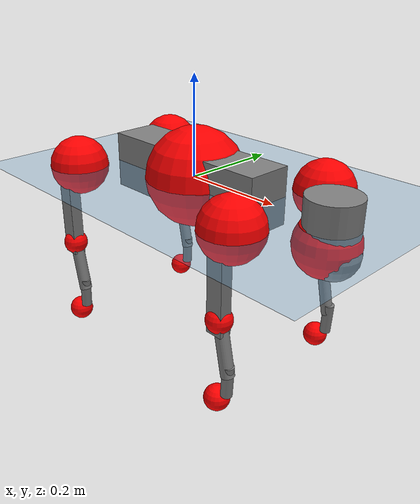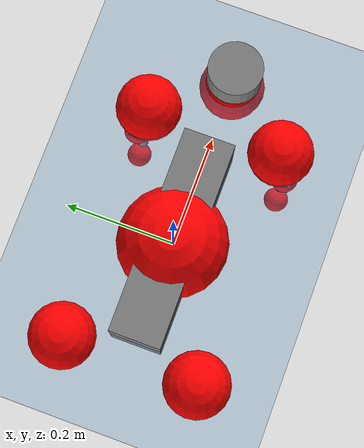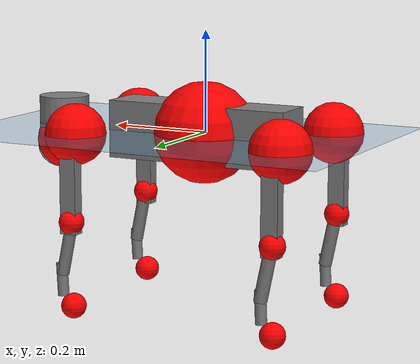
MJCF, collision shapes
<mujoco model="go2">
  <compiler angle="radian" assetdir="assets" balanceinertia="true" inertiafromgeom="false"/>

  <option timestep="0.005" density="1.2" viscosity="2e-05"/>

  <size nkey="1"/>

  <visual>
    <quality shadowsize="8192"/>
    <map shadowclip="0.5"/>
  </visual>

  <default>
    <default class="/">
      <geom contype="0" conaffinity="0" group="1" solref="-1000 -80"/>
      <site size="0.01 0.005 0.005" group="5"/>
      <general forcelimited="true" biastype="affine" gainprm="20" biasprm="0 -20 -0.5"/>
      <default class="go2">
        <joint armature="0.01" damping="0.01" frictionloss="0.2"/>
        <geom condim="1" margin="0.001"/>
        <default class="visual">
          <geom type="mesh" group="2"/>
        </default>
        <default class="collision">
          <geom group="3"/>
          <default class="foot">
            <geom size="0.022 0 0" condim="6" priority="1" friction="0.8 0.02 0.01" solimp="0.015 1 0.022"/>
          </default>
        </default>
        <default class="reward_collision_sphere">
          <geom group="5" rgba="1 0 0 1"/>
        </default>
      </default>
    </default>
  </default>

  <asset>
    <texture type="skybox" colorspace="auto" name="//unnamed_texture_0" builtin="gradient" rgb1="0.95 0.95 0.95" rgb2="0.95 0.95 0.95" width="100" height="600"/>
    <texture type="2d" colorspace="auto" name="texplane" builtin="checker" rgb1="0.345 0.575 0.748" rgb2="0.345 0.575 0.748" markrgb="1 1 1" width="512" height="512"/>
    <material name="MatPlane" class="/" texture="texplane" texuniform="true" texrepeat="2 2" specular="0.9"/>
    <material name="metal" class="/" rgba="0.9 0.95 0.95 1"/>
    <material name="black" class="/" rgba="0 0 0 1"/>
    <material name="white" class="/"/>
    <material name="gray" class="/" rgba="0.671705 0.692426 0.77427 1"/>
    <mesh name="base_0" class="/" file="base_0.obj"/>
    <mesh name="base_1" class="/" file="base_1.obj"/>
    <mesh name="base_2" class="/" file="base_2.obj"/>
    <mesh name="base_3" class="/" file="base_3.obj"/>
    <mesh name="base_4" class="/" file="base_4.obj"/>
    <mesh name="hip_0" class="/" file="hip_0.obj"/>
    <mesh name="hip_1" class="/" file="hip_1.obj"/>
    <mesh name="thigh_0" class="/" file="thigh_0.obj"/>
    <mesh name="thigh_1" class="/" file="thigh_1.obj"/>
    <mesh name="thigh_mirror_0" class="/" file="thigh_mirror_0.obj"/>
    <mesh name="thigh_mirror_1" class="/" file="thigh_mirror_1.obj"/>
    <mesh name="calf_0" class="/" file="calf_0.obj"/>
    <mesh name="calf_1" class="/" file="calf_1.obj"/>
    <mesh name="calf_mirror_0" class="/" file="calf_mirror_0.obj"/>
    <mesh name="calf_mirror_1" class="/" file="calf_mirror_1.obj"/>
    <mesh name="foot" class="/" file="foot.obj"/>
  </asset>

  <worldbody>
    <geom name="floor" class="/" size="100 100 0.125" type="plane" group="0" material="MatPlane"/>
    <light name="toplight_shadow" class="/" pos="0 0 5" dir="0.0990148 0.0990148 -0.990148" type="directional" ambient="0.04 0.04 0.04" diffuse="0.55 0.55 0.55" specular="0.12 0.12 0.12"/>
    <light name="toplight_fill" class="/" pos="0 0 5" dir="0.0990148 0.0990148 -0.990148" type="directional" castshadow="false" ambient="0.04 0.04 0.04" diffuse="0.3 0.3 0.3" specular="0.08 0.08 0.08"/>
    <body name="trunk" childclass="go2" pos="0.00165615 0.00220237 0.00102532" quat="1 0.000390522 7.03207e-05 -3.34221e-05">
      <inertial pos="0.0234767 0.000469632 -0.00433508" quat="-0.0105904 0.720016 -0.00295652 0.69387" mass="7.00369" diaginertia="0.20462 0.151867 0.0073745"/>
      <joint name="//unnamed_joint_0" type="free" armature="0" damping="0" frictionloss="0"/>
      <geom name="//unnamed_geom_1" class="visual" material="black" mesh="base_0"/>
      <geom name="//unnamed_geom_2" class="visual" material="black" mesh="base_1"/>
      <geom name="//unnamed_geom_3" class="visual" material="black" mesh="base_2"/>
      <geom name="//unnamed_geom_4" class="visual" material="white" mesh="base_3"/>
      <geom name="//unnamed_geom_5" class="visual" material="gray" mesh="base_4"/>
      <geom name="trunk_1" class="collision" size="0.187753 0.0466638 0.0568949" type="box"/>
      <geom name="trunk_2" class="collision" size="0.0499078 0.044917" pos="0.3214 0 0.00787679" type="cylinder"/>
      <geom name="trunk_3" class="collision" size="0.0469133" pos="0.330421 0 -0.0472607"/>
      <geom name="//unnamed_geom_9" class="reward_collision_sphere" size="0.0998156"/>
      <geom name="//unnamed_geom_10" class="reward_collision_sphere" size="0.0598894" pos="0.315761 0 -0.0354456"/>
      <site name="imu" pos="-0.0229871 0.00268934 0.0293113" size="0.00998156"/>
      <camera name="track" pos="0 -2.15814 0" quat="0.707107 0.707107 0 0" mode="trackcom"/>
      <camera name="ego_camera" pos="0.351848 0 0.0354456" quat="-0.5 -0.5 0.5 0.5"/>
      <body name="FL_hip" pos="0.216756 0.0496407 -0.00199922" quat="1 0.000234731 0.00083606 6.59726e-05">
        <inertial pos="-0.00734928 0.000135595 6.6416e-05" quat="0.494941 0.500464 0.506132 0.498397" mass="0.676627" diaginertia="0.00162028 0.000851203 0.000148216"/>
        <joint name="FL_hip_joint" pos="0 0 0" axis="0.999998 -0.000708063 -0.00179728" stiffness="0.00152094" range="-1.02874 1.0472" armature="0.00962476" damping="0.0121499" frictionloss="0.226372"/>
        <geom name="//unnamed_geom_11" class="visual" material="metal" mesh="hip_0"/>
        <geom name="//unnamed_geom_12" class="visual" material="gray" mesh="hip_1"/>
        <geom name="//unnamed_geom_13" class="collision" size="0.0459152 0.0199631" pos="0 0.0863257 0" quat="0.707107 0.707107 0 0" type="cylinder"/>
        <geom name="//unnamed_geom_14" class="reward_collision_sphere" size="0.0598894" pos="0 0.075535 0"/>
        <body name="FL_thigh" pos="-0.0032231 0.102401 -0.00176245" quat="0.999999 0.000197281 -0.000723989 0.00117641">
          <inertial pos="-0.0035337 -0.0237346 -0.0261941" quat="0.83039 0.0789934 -0.00842952 0.55149" mass="1.10629" diaginertia="0.0105287 0.00834908 0.000262145"/>
          <joint name="FL_thigh_joint" pos="0 0 0" axis="0.0123215 0.99984 -0.0129395" range="-1.5228 3.49297" armature="0.0111539" damping="0" frictionloss="0.17154"/>
          <geom name="//unnamed_geom_15" class="visual" material="metal" mesh="thigh_0"/>
          <geom name="//unnamed_geom_16" class="visual" material="gray" mesh="thigh_1"/>
          <geom name="//unnamed_geom_17" class="collision" size="0.106304 0.0122274 0.0169687" pos="0 0 -0.0838878" quat="0.707107 0 0.707107 0" type="box"/>
          <body name="FL_calf" pos="-0.0010525 -0.000542076 -0.166844" quat="0.999999 -0.000607816 0.000840366 0.000878109">
            <inertial pos="0.00974533 -0.000948196 -0.109718" quat="0.707263 0.00444331 -0.00626026 0.706909" mass="0.257294" diaginertia="0.00272584 0.00223109 1.62523e-05"/>
            <joint name="FL_calf_joint" pos="0 0 0" axis="0.00307995 0.999992 0.00250807" stiffness="0.00433723" range="-2.71831 -0.831315" armature="0.0102779" damping="0" frictionloss="0.19039"/>
            <geom name="//unnamed_geom_18" class="visual" material="gray" mesh="calf_0"/>
            <geom name="//unnamed_geom_19" class="visual" material="black" mesh="calf_1"/>
            <geom name="FL_calf0" class="collision" size="0.0119779 0.0598894" pos="0.00902174 0 -0.0472607" quat="0.994493 0 -0.104807 0" type="cylinder"/>
            <geom name="//unnamed_geom_21" class="collision" size="0.0109797 0.0324401" pos="0.0225544 0 -0.116577" quat="0.999688 0 0.0249974 0" type="cylinder"/>
            <geom name="//unnamed_geom_22" class="visual" pos="0 0 -0.167776" quat="1 0 0 0" material="black" mesh="foot"/>
            <geom name="FL_foot" class="foot" size="0.0221509" pos="-0.00225544 0 -0.167776"/>
            <geom name="//unnamed_geom_24" class="reward_collision_sphere" size="0.0249539"/>
            <geom name="//unnamed_geom_25" class="reward_collision_sphere" size="0.0249539" pos="-0.00225544 0 -0.167776"/>
            <site name="FL_foot" class="foot" pos="-0.00225544 0 -0.167776" size="0.00998156"/>
          </body>
        </body>
      </body>
      <body name="FR_hip" pos="0.21776 -0.049758 -0.00101493" quat="1 0.000101601 0.000211594 0.000241635">
        <inertial pos="-0.00549774 -0.000646637 -0.000545991" quat="0.500397 0.501531 0.490642 0.507287" mass="0.678555" diaginertia="0.00165237 0.000851853 0.000147378"/>
        <joint name="FR_hip_joint" pos="0 0 0" axis="0.999964 0.00674431 0.00508079" range="-1.07373 1.0312" armature="0.010095" damping="0.0137597" frictionloss="0.17865"/>
        <geom name="//unnamed_geom_26" class="visual" pos="0 2.53849e-09 1.08881e-07" quat="4.63268e-05 1 0 0" material="metal" mesh="hip_0"/>
        <geom name="//unnamed_geom_27" class="visual" pos="0 4.1152e-09 -2.69305e-07" quat="4.63268e-05 1 0 0" material="gray" mesh="hip_1"/>
        <geom name="//unnamed_geom_28" class="collision" size="0.0459152 0.0199631" pos="0 -0.0863257 0" quat="0.707107 0.707107 0 0" type="cylinder"/>
        <geom name="//unnamed_geom_29" class="reward_collision_sphere" size="0.0598894" pos="0 -0.075535 0"/>
        <body name="FR_thigh" pos="-4.38e-05 -0.102388 0.00352251" quat="1 6.6538e-06 -9.99076e-07 3.61158e-06">
          <inertial pos="-0.00676579 0.0240147 -0.0243871" quat="0.551718 -0.0200269 0.0847263 0.829474" mass="1.17271" diaginertia="0.0109802 0.00870618 0.000271705"/>
          <joint name="FR_thigh_joint" pos="0 0 0" axis="-0.00878118 -0.999914 0.00973414" stiffness="0.00868117" range="-3.47925 1.62448" armature="0.0093078" damping="0.00621119" frictionloss="0.201694"/>
          <geom name="//unnamed_geom_30" class="visual" material="metal" mesh="thigh_mirror_0"/>
          <geom name="//unnamed_geom_31" class="visual" material="gray" mesh="thigh_mirror_1"/>
          <geom name="//unnamed_geom_32" class="collision" size="0.106304 0.0122274 0.0169687" pos="0 0 -0.0838878" quat="0.707107 0 0.707107 0" type="box"/>
          <body name="FR_calf" pos="-4.70616e-05 0.00201598 -0.165197" quat="1 0.000245499 2.83211e-05 -7.47183e-05">
            <inertial pos="0.00682746 -0.00204415 -0.10938" quat="0.703507 -0.00451417 0.0015401 0.710672" mass="0.234818" diaginertia="0.00282297 0.00220279 1.62978e-05"/>
            <joint name="FR_calf_joint" pos="0 0 0" axis="0.0141565 -0.9999 0.000565369" stiffness="0.00473547" range="0.817178 2.73868" armature="0.00969534" damping="0.0149456" frictionloss="0.217539"/>
            <geom name="//unnamed_geom_33" class="visual" material="gray" mesh="calf_mirror_0"/>
            <geom name="//unnamed_geom_34" class="visual" material="black" mesh="calf_mirror_1"/>
            <geom name="FR_calf0" class="collision" size="0.012976 0.0598894" pos="0.0112772 0 -0.0472607" quat="0.995004 0 -0.0998334 0" type="cylinder"/>
            <geom name="//unnamed_geom_36" class="collision" size="0.0109797 0.0324401" pos="0.0225544 0 -0.116577" quat="0.999688 0 0.0249974 0" type="cylinder"/>
            <geom name="//unnamed_geom_37" class="visual" pos="0 0 -0.167776" quat="1 0 0 0" material="black" mesh="foot"/>
            <geom name="FR_foot" class="foot" size="0.0198557" pos="-0.00225544 0 -0.167776"/>
            <geom name="//unnamed_geom_39" class="reward_collision_sphere" size="0.0249539"/>
            <geom name="//unnamed_geom_40" class="reward_collision_sphere" size="0.0249539" pos="-0.00225544 0 -0.167776"/>
            <site name="FR_foot" class="foot" pos="-0.00225544 0 -0.167776" size="0.00998156"/>
          </body>
        </body>
      </body>
      <body name="RL_hip" pos="-0.218751 0.047754 -0.00177864" quat="1 0.000194206 -4.06235e-05 6.26664e-05">
        <inertial pos="0.00715666 0.0020303 0.000503921" quat="0.510728 0.497832 0.48969 0.501522" mass="0.647733" diaginertia="0.00158037 0.000866337 0.000141056"/>
        <joint name="RL_hip_joint" pos="0 0 0" axis="-0.99991 -0.00229194 -0.0132092" stiffness="0.00205236" range="-0.993242 1.08715" armature="0.00985167" damping="0.0177636" frictionloss="0.18101"/>
        <geom name="//unnamed_geom_41" class="visual" pos="-2.96228e-09 0 -5.80674e-07" quat="4.63268e-05 0 1 0" material="metal" mesh="hip_0"/>
        <geom name="//unnamed_geom_42" class="visual" pos="-4.8022e-09 0 -5.14976e-07" quat="4.63268e-05 0 1 0" material="gray" mesh="hip_1"/>
        <geom name="//unnamed_geom_43" class="collision" size="0.0459152 0.0199631" pos="0 0.0863257 0" quat="0.707107 0.707107 0 0" type="cylinder"/>
        <geom name="//unnamed_geom_44" class="reward_collision_sphere" size="0.0598894" pos="0 0.075535 0"/>
        <body name="RL_thigh" pos="0.00281035 0.10493 -0.00131448" quat="0.999999 -0.000496549 -0.000840052 0.000487178">
          <inertial pos="-0.00370546 -0.0232301 -0.0267745" quat="0.8256 0.0920169 -0.0125243 0.556561" mass="1.1897" diaginertia="0.0108238 0.00871637 0.000274398"/>
          <joint name="RL_thigh_joint" pos="0 0 0" axis="0.00620148 0.999979 -0.00168429" range="-0.468706 4.59739" armature="0.0105533" damping="0.00838186" frictionloss="0.220155"/>
          <geom name="//unnamed_geom_45" class="visual" material="metal" mesh="thigh_0"/>
          <geom name="//unnamed_geom_46" class="visual" material="gray" mesh="thigh_1"/>
          <geom name="//unnamed_geom_47" class="collision" size="0.106304 0.0122274 0.0169687" pos="0 0 -0.0838878" quat="0.707107 0 0.707107 0" type="box"/>
          <body name="RL_calf" pos="-0.00262049 0.00167181 -0.168663" quat="1 5.10104e-06 -7.0211e-05 -1.4794e-06">
            <inertial pos="0.00612582 -0.00046948 -0.111681" quat="0.716104 0.0130519 -0.00531495 0.697851" mass="0.236961" diaginertia="0.00274964 0.00208422 1.60907e-05"/>
            <joint name="RL_calf_joint" pos="0 0 0" axis="-0.0114169 0.999724 0.0205506" range="-2.71015 -0.890434" armature="0.0103516" damping="0" frictionloss="0.175754"/>
            <geom name="//unnamed_geom_48" class="visual" material="gray" mesh="calf_0"/>
            <geom name="//unnamed_geom_49" class="visual" material="black" mesh="calf_1"/>
            <geom name="RL_calf0" class="collision" size="0.012976 0.0598894" pos="0.0112772 0 -0.0472607" quat="0.995004 0 -0.0998334 0" type="cylinder"/>
            <geom name="//unnamed_geom_51" class="collision" size="0.0109797 0.0324401" pos="0.0225544 0 -0.116577" quat="0.999688 0 0.0249974 0" type="cylinder"/>
            <geom name="//unnamed_geom_52" class="visual" pos="0 0 -0.167776" quat="1 0 0 0" material="black" mesh="foot"/>
            <geom name="RL_foot" class="foot" size="0.0189273" pos="-0.00225544 0 -0.167776"/>
            <geom name="//unnamed_geom_54" class="reward_collision_sphere" size="0.0249539"/>
            <geom name="//unnamed_geom_55" class="reward_collision_sphere" size="0.0249539" pos="-0.00225544 0 -0.167776"/>
            <site name="RL_foot" class="foot" pos="-0.00225544 0 -0.167776" size="0.00998156"/>
          </body>
        </body>
      </body>
      <body name="RR_hip" pos="-0.218391 -0.0493716 -0.00224537" quat="1 0.000605786 -0.000708279 0.000216748">
        <inertial pos="0.00876178 0.000679529 0.000244459" quat="0.498998 0.495281 0.496362 0.509237" mass="0.672714" diaginertia="0.0016689 0.000902149 0.000150627"/>
        <joint name="RR_hip_joint" pos="0 0 0" axis="-0.999996 -0.00277288 -0.00103569" range="-1.05037 1.08053" armature="0.00902577" damping="0.0186598" frictionloss="0.197323"/>
        <geom name="//unnamed_geom_56" class="visual" pos="2.96059e-09 2.53849e-09 -6.89556e-07" quat="2.14617e-09 4.63268e-05 4.63268e-05 -1" material="metal" mesh="hip_0"/>
        <geom name="//unnamed_geom_57" class="visual" pos="4.80637e-09 4.1152e-09 -2.45671e-07" quat="2.14617e-09 4.63268e-05 4.63268e-05 -1" material="gray" mesh="hip_1"/>
        <geom name="//unnamed_geom_58" class="collision" size="0.0459152 0.0199631" pos="0 -0.0863257 0" quat="0.707107 0.707107 0 0" type="cylinder"/>
        <geom name="//unnamed_geom_59" class="reward_collision_sphere" size="0.0598894" pos="0 -0.075535 0"/>
        <body name="RR_thigh" pos="0.000539699 -0.104968 0.000538095" quat="0.999999 -0.000166002 0.000456553 -0.00113141">
          <inertial pos="-0.00335087 0.0251515 -0.0243722" quat="0.55159 -0.0194824 0.0841877 0.829627" mass="1.13502" diaginertia="0.010979 0.00878472 0.000266984"/>
          <joint name="RR_thigh_joint" pos="0 0 0" axis="0.0169342 -0.999843 -0.00520518" range="-4.52845 0.563297" armature="0.0109146" damping="0.00359651" frictionloss="0.172674"/>
          <geom name="//unnamed_geom_60" class="visual" material="metal" mesh="thigh_mirror_0"/>
          <geom name="//unnamed_geom_61" class="visual" material="gray" mesh="thigh_mirror_1"/>
          <geom name="//unnamed_geom_62" class="collision" size="0.106304 0.0122274 0.0169687" pos="0 0 -0.0838878" quat="0.707107 0 0.707107 0" type="box"/>
          <body name="RR_calf" pos="0.00143138 0.00125965 -0.168166" quat="1 0.00039317 7.28265e-05 -5.85557e-05">
            <inertial pos="0.00529863 0.000157066 -0.110486" quat="0.704905 -0.00195587 -0.00233702 0.709295" mass="0.249024" diaginertia="0.00265423 0.00221777 1.63547e-05"/>
            <joint name="RR_calf_joint" pos="0 0 0" axis="-0.00130639 -0.99999 -0.00422853" range="0.797004 2.74482" armature="0.00985533" damping="0.0180429" frictionloss="0.208838"/>
            <geom name="//unnamed_geom_63" class="visual" material="gray" mesh="calf_mirror_0"/>
            <geom name="//unnamed_geom_64" class="visual" material="black" mesh="calf_mirror_1"/>
            <geom name="RR_calf0" class="collision" size="0.012976 0.0598894" pos="0.0112772 0 -0.0472607" quat="0.995004 0 -0.0998334 0" type="cylinder"/>
            <geom name="//unnamed_geom_66" class="collision" size="0.0109797 0.0324401" pos="0.0225544 0 -0.116577" quat="0.999688 0 0.0249974 0" type="cylinder"/>
            <geom name="//unnamed_geom_67" class="visual" pos="0 0 -0.167776" quat="1 0 0 0" material="black" mesh="foot"/>
            <geom name="RR_foot" class="foot" size="0.0220601" pos="-0.00225544 0 -0.167776"/>
            <geom name="//unnamed_geom_69" class="reward_collision_sphere" size="0.0249539"/>
            <geom name="//unnamed_geom_70" class="reward_collision_sphere" size="0.0249539" pos="-0.00225544 0 -0.167776"/>
            <site name="RR_foot" class="foot" pos="-0.00225544 0 -0.167776" size="0.00998156"/>
          </body>
        </body>
      </body>
    </body>
  </worldbody>

  <contact>
    <pair class="/" geom1="floor" geom2="FL_foot" name="//unnamed_contact_0"/>
    <pair class="/" geom1="floor" geom2="FR_foot" name="//unnamed_contact_1"/>
    <pair class="/" geom1="floor" geom2="RL_foot" name="//unnamed_contact_2"/>
    <pair class="/" geom1="floor" geom2="RR_foot" name="//unnamed_contact_3"/>
  </contact>

  <actuator>
    <general name="FL_hip" class="/" joint="FL_hip_joint" forcerange="-23.4794 23.4794" gainprm="20.2645" biasprm="0 -20.2645 -0.516259"/>
    <general name="FL_thigh" class="/" joint="FL_thigh_joint" forcerange="-21.8506 21.8506" gainprm="20.2645" biasprm="0 -20.2645 -0.516259"/>
    <general name="FL_calf" class="/" joint="FL_calf_joint" forcerange="-49.7545 49.7545" gainprm="20.2645" biasprm="0 -20.2645 -0.516259"/>
    <general name="FR_hip" class="/" joint="FR_hip_joint" forcerange="-23.5065 23.5065" gainprm="20.2645" biasprm="0 -20.2645 -0.516259"/>
    <general name="FR_thigh" class="/" joint="FR_thigh_joint" forcerange="-22.9278 22.9278" gainprm="20.2645" biasprm="0 -20.2645 -0.516259"/>
    <general name="FR_calf" class="/" joint="FR_calf_joint" forcerange="-49.6266 49.6266" gainprm="20.2645" biasprm="0 -20.2645 -0.516259"/>
    <general name="RL_hip" class="/" joint="RL_hip_joint" forcerange="-23.6365 23.6365" gainprm="20.2645" biasprm="0 -20.2645 -0.516259"/>
    <general name="RL_thigh" class="/" joint="RL_thigh_joint" forcerange="-26.1577 26.1577" gainprm="20.2645" biasprm="0 -20.2645 -0.516259"/>
    <general name="RL_calf" class="/" joint="RL_calf_joint" forcerange="-40.6945 40.6945" gainprm="20.2645" biasprm="0 -20.2645 -0.516259"/>
    <general name="RR_hip" class="/" joint="RR_hip_joint" forcerange="-24.5526 24.5526" gainprm="20.2645" biasprm="0 -20.2645 -0.516259"/>
    <general name="RR_thigh" class="/" joint="RR_thigh_joint" forcerange="-24.9609 24.9609" gainprm="20.2645" biasprm="0 -20.2645 -0.516259"/>
    <general name="RR_calf" class="/" joint="RR_calf_joint" forcerange="-45.1131 45.1131" gainprm="20.2645" biasprm="0 -20.2645 -0.516259"/>
  </actuator>

  <sensor>
    <gyro site="imu" name="imu_angular_velocity"/>
    <velocimeter site="imu" name="imu_linear_velocity"/>
    <framelinvel objtype="site" objname="FL_foot" name="FL_foot_global_linear_velocity"/>
    <framelinvel objtype="site" objname="FR_foot" name="FR_foot_global_linear_velocity"/>
    <framelinvel objtype="site" objname="RL_foot" name="RL_foot_global_linear_velocity"/>
    <framelinvel objtype="site" objname="RR_foot" name="RR_foot_global_linear_velocity"/>
  </sensor>

  <keyframe>
    <key name="home" qpos="0 0 0.325 1 0 0 0 0.1 0.8 -1.5 -0.1 -0.8 1.5 -0.1 0.8 -1.5 0.1 -0.8 1.5"/>
  </keyframe>
</mujoco>
